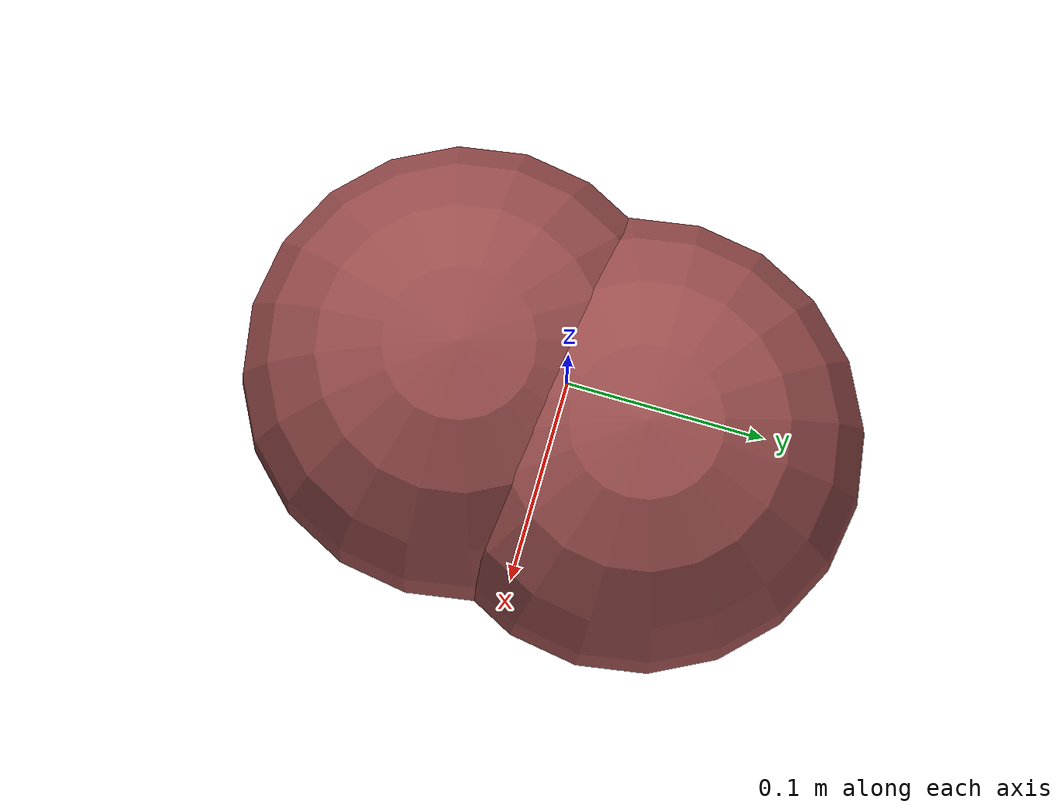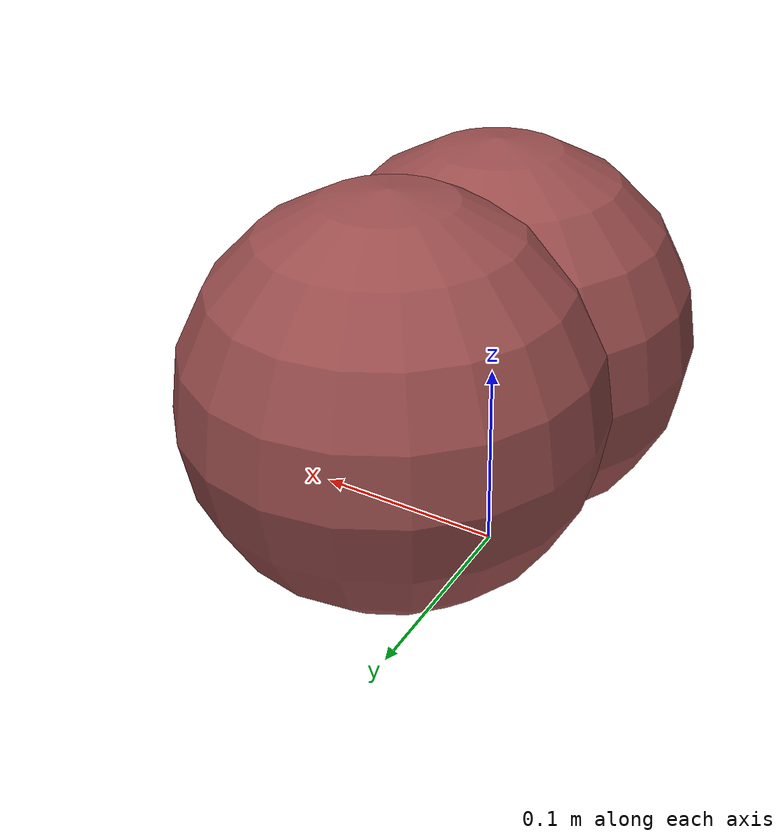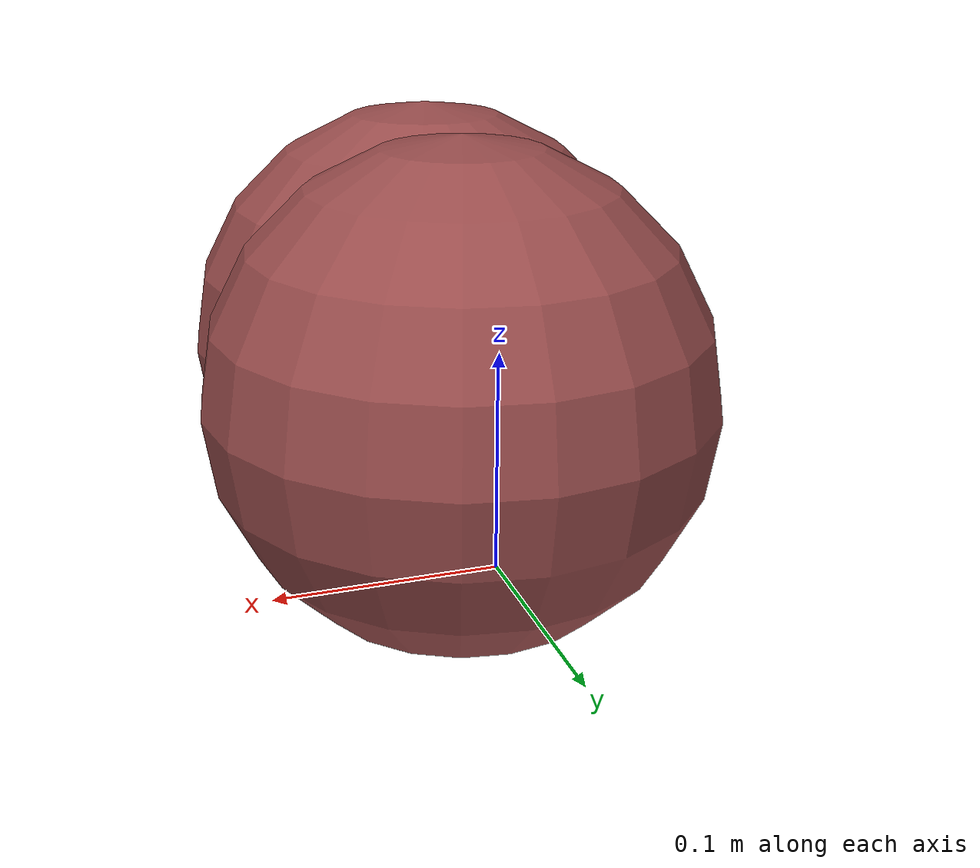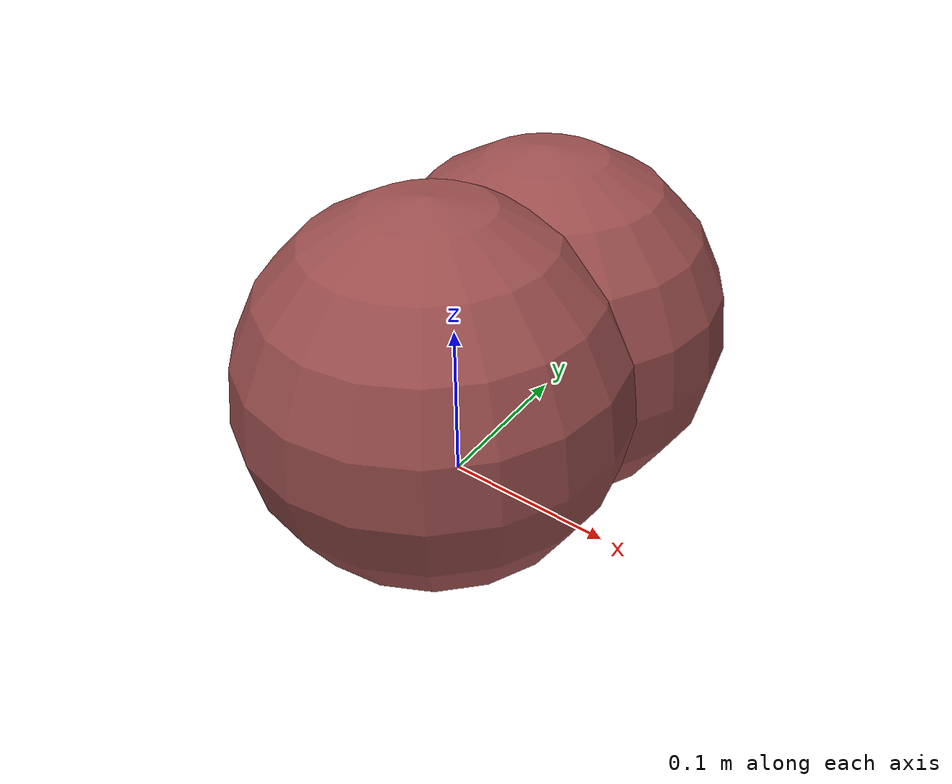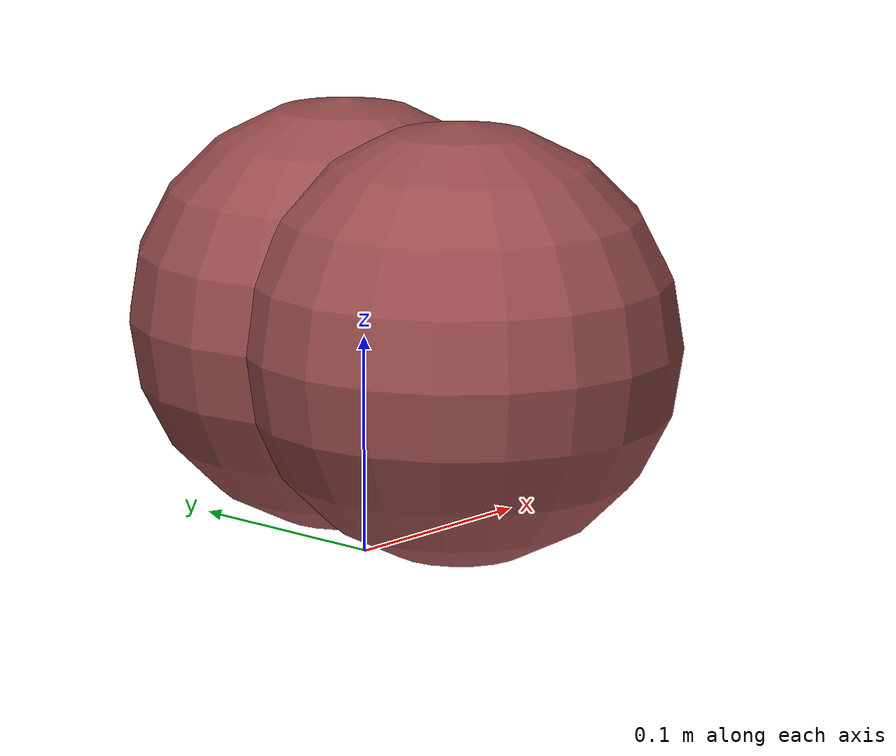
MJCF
<mujoco model="world">
  <default>
    <default class="/"/>
    <default class="sphere_0/"/>
    <default class="sphere_1/"/>
  </default>
  <asset>
    <material name="sphere_0/obstacle" class="sphere_0/" rgba="0.59999999999999998 0.29999999999999999 0.29999999999999999 1"/>
    <material name="sphere_1/obstacle" class="sphere_1/" rgba="0.59999999999999998 0.29999999999999999 0.29999999999999999 1"/>
  </asset>
  <worldbody>
    <body name="sphere_0/">
      <geom name="sphere_0/obstacle" class="sphere_0/" type="sphere" size="0.10000000000000001" material="sphere_0/obstacle" pos="0.029999999329447746 0.039999999105930328 0.10000000149011612"/>
    </body>
    <body name="sphere_1/">
      <geom name="sphere_1/obstacle" class="sphere_1/" type="sphere" size="0.10000000000000001" material="sphere_1/obstacle" pos="0.019999999552965164 -0.039999999105930328 0.10000000149011612"/>
    </body>
  </worldbody>
</mujoco>
